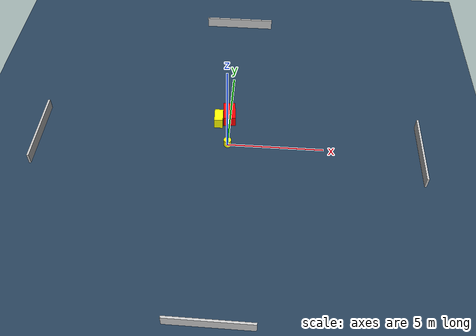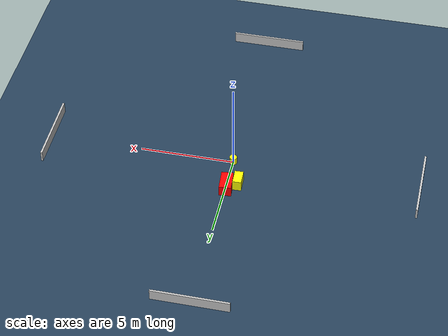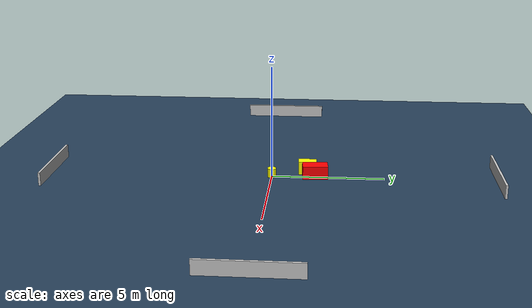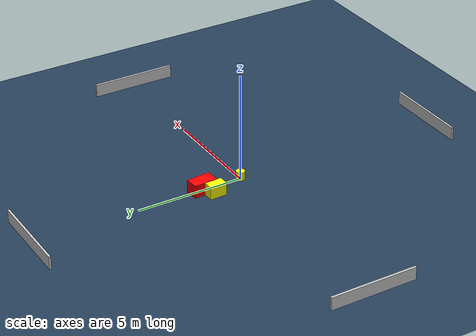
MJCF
<?xml version="1.0" ?>
<mujoco model="generated_environment">
  <option timestep="0.01" integrator="RK4" cone="elliptic"/>
  <default>
    <geom density="1"/>
  </default>
  <asset>
    <texture builtin="gradient" height="3072" name="skybox" rgb1="0.3 0.5 0.7" rgb2="0 0 0" type="skybox" width="512"/>
    <texture builtin="checker" height="300" name="groundplane" rgb1="0.2 0.3 0.4" rgb2="0.1 0.2 0.3" type="2d" width="300"/>
    <material name="groundplane" reflectance="0.2" texrepeat="5 5" texture="groundplane"/>
  </asset>
  <worldbody>
    <light dir="0 0 -1" directional="true" pos="0 0 1.5"/>
    <geom condim="3" friction="0.5 0.005 0.001" material="groundplane" name="floor" pos="0 0 0" size="0 0 0.05" type="plane"/>
    <body name="walls">
      <geom name="wall_1" condim="4" pos="-10.0 0.0 0.3" rgba="0.800000011920929 0.800000011920929 0.800000011920929 1.0" size="0.05 2.0 0.3" type="box"/>
      <geom name="wall_2" condim="4" pos="10.0 0.0 0.3" rgba="0.800000011920929 0.800000011920929 0.800000011920929 1.0" size="0.05 2.0 0.3" type="box"/>
      <geom name="wall_3" condim="4" pos="0.0 -10.0 0.3" rgba="0.800000011920929 0.800000011920929 0.800000011920929 1.0" size="2.0 0.05 0.3" type="box"/>
      <geom name="wall_4" condim="4" pos="0.0 10.0 0.3" rgba="0.800000011920929 0.800000011920929 0.800000011920929 1.0" size="2.0 0.05 0.3" type="box"/>
    </body>
    <body name="robot">
      <joint name="joint_x" type="slide" pos="0 0 0" axis="1 0 0"/>
      <joint name="joint_y" type="slide" pos="0 0 0" axis="0 1 0"/>
      <geom name="robot" type="cylinder" pos="0.0 0.0 0.2" size="0.2 0.2 0.0" mass="5.0" friction="1.0 0.005 0.0001" condim="4" rgba="1.0 1.0 0.0 1.0"/>
    </body>
    <body name="obstacle_1_movable">
      <geom name="obstacle_1_movable" condim="4" pos="-0.5922553401877165 1.5753388802322923 0.3" euler="0 0 182.07779063287103" friction="0.0 0.005 0.001" rgba="1.0 1.0 0.0 1.0" size="0.22936660239023243 0.4038310626579118 0.3" type="box" mass="0.1"/>
      <joint type="free"/>
    </body>
    <body name="obstacle_2_static">
      <geom name="obstacle_2_static" condim="4" pos="-0.04332035471832732 1.9373493946069613 0.3" euler="0 0 94.79016193042295" friction="0.0 0.005 0.001" rgba="1.0 0.0 0.0 1.0" size="0.5600023026940085 0.3197577001688341 0.3" type="box"/>
    </body>
  </worldbody>
  <actuator>
    <motor name="actuator_x" joint="joint_x" gear="1" ctrlrange="-1 1"/>
    <motor name="actuator_y" joint="joint_y" gear="1" ctrlrange="-1 1"/>
  </actuator>
</mujoco>
